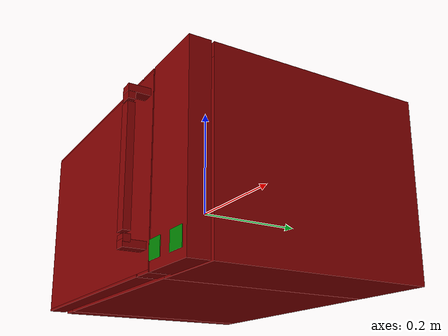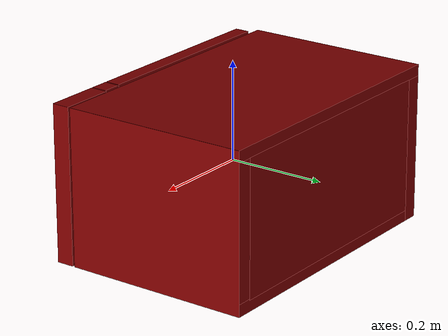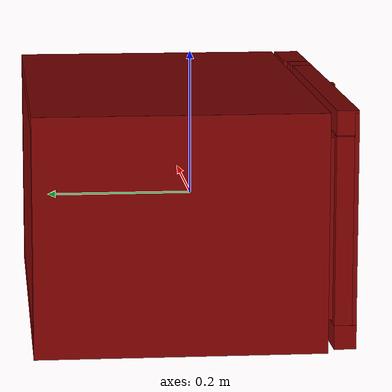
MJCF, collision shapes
<?xml version='1.0' encoding='UTF-8'?>
<mujoco model="model">
  <option timestep="0.002" gravity="0.0 0.0 -9.81"/>
  <compiler angle="radian"/>
  <asset>
    <mesh file="visuals/door.obj" name="door_vis"/>
    <mesh file="visuals/door_Clear.obj" name="door_Clear_vis"/>
    <mesh file="visuals/Body001.obj" name="Body001_vis"/>
    <mesh file="visuals/Disc001.obj" name="Disc001_vis"/>
    <texture file="visuals/T_BC001.png" name="Body001_material" type="2d"/>
    <material name="Body001_material" rgba="1 1 1 1.0" texture="Body001_material" shininess="0.4472135901451111" specular="0.5"/>
    <texture file="visuals/T_BC001.png" name="door_material" type="2d"/>
    <material name="door_material" rgba="1 1 1 1.0" texture="door_material" shininess="0.4472135901451111" specular="0.5"/>
    <texture file="visuals/T_BC001.png" name="door_Clear_material" type="2d"/>
    <material name="door_Clear_material" rgba="1 1 1 0.7461665868759155" texture="door_Clear_material" shininess="0.5" specular="0.3103448502657381"/>
    <texture file="visuals/T_BC001.png" name="Disc001_material" type="2d"/>
    <material name="Disc001_material" rgba="1 1 1 1.0" texture="Disc001_material" shininess="0.4472135901451111" specular="0.3103448502657381"/>
  </asset>
  <default>
    <default class="visual">
      <geom conaffinity="0" contype="0" group="1" type="mesh"/>
    </default>
    <default class="collision">
      <geom group="0" rgba="0.5 0 0 0.5"/>
    </default>
    <default class="spawn">
      <geom group="0" rgba="1 1 1 0.5" contype="0" conaffinity="0"/>
      <site group="0" rgba="1 1 1 0.5"/>
    </default>
    <default class="region">
      <geom group="1" conaffinity="0" contype="0" rgba="0 1 0 0"/>
    </default>
  </default>
  <worldbody>
    <body>
      <body name="object">
        <geom class="collision" type="cylinder" pos="-0.06337848 0.01617843 -0.12393230" size="0.15958929061889648 0.00219227303750813" quat="1.0 0.0 0.0 0.0" name="tray" rgba="0 1 0 0.5"/>
        <geom class="collision" type="box" pos="0.27165092 -0.19609573 -0.12911044" size="0.01778864488005638 0.0004714453825727105 0.015375573188066483" quat="1.0 0.0 0.0 0.0" name="stop_button" rgba="0.0 0.5 0 0.5"/>
        <geom class="collision" type="box" pos="0.20700557 -0.19609573 -0.12901173" size="0.017673127353191376 0.0004856445884797722 0.015215178951621056" quat="1.0 0.0 0.0 0.0" name="start_button" rgba="0.0 0.5 0 0.5"/>
        <geom mesh="Body001_vis" type="mesh" solimp="0.998 0.998 0.001" solref="0.001 1" friction="0.95 0.3 0.1" class="visual" material="Body001_material"/>
        <geom class="collision" type="box" pos="-0.00004140 0.03823852 -0.14610830" size="0.29566651582717896 0.19136711955070496 0.012420483864843845" quat="1.0 0.0 0.0 0.0"/>
        <geom class="collision" type="box" pos="-0.27927723 0.03823842 -0.00004964" size="0.016435038298368454 0.19136762619018555 0.15847915410995483" quat="1.0 0.0 0.0 0.0"/>
        <geom class="collision" type="box" pos="0.22286250 0.03823116 -0.00006048" size="0.07280100136995316 0.19136066734790802 0.15849001705646515" quat="1.0 0.0 0.0 0.0"/>
        <geom class="collision" type="box" pos="-0.00011076 0.03823836 0.14699513" size="0.2955980598926544 0.19136814773082733 0.011555762961506844" quat="1.0 0.0 0.0 0.0"/>
        <geom class="collision" type="box" pos="0.24033848 -0.17531618 0.00000026" size="0.05532510206103325 0.01772184483706951 0.15855064988136292" quat="1.0 0.0 0.0 0.0"/>
        <geom class="collision" type="box" pos="0.00051635 0.21268383 -0.00026216" size="0.26304200291633606 0.016924718394875526 0.13627800345420837" quat="1.0 0.0 0.0 0.0"/>
        <body name="door">
          <joint axis="0.0 0.0 1.0" pos="-0.27760436 -0.17558492 0.00234197" limited="true" name="microjoint" range="-1.5707963267948966 0.0" type="hinge" damping="1" frictionloss="1" armature=".01" stiffness="0.05"/>
          <geom mesh="door_vis" type="mesh" solimp="0.998 0.998 0.001" solref="0.001 1" friction="0.95 0.3 0.1" class="visual" material="door_material"/>
          <geom class="collision" type="box" pos="-0.06762617 -0.17846995 0.14213432" size="0.20889529585838318 0.014686024747788906 0.016416562721133232" quat="1.0 0.0 0.0 0.0"/>
          <geom class="collision" type="box" pos="-0.06806992 -0.17846992 -0.14244628" size="0.20933932065963745 0.014686010777950287 0.016104184091091156" quat="1.0 0.0 0.0 0.0"/>
          <geom class="collision" type="box" pos="-0.26717403 -0.17846989 -0.00103410" size="0.009744858369231224 0.014686006121337414 0.1256919503211975" quat="1.0 0.0 0.0 0.0"/>
          <geom class="collision" type="box" pos="0.16294425 -0.17762169 0.00000023" size="0.018825886771082878 0.01553423423320055 0.1585506647825241" quat="1.0 0.0 0.0 0.0"/>
          <geom class="collision" type="box" pos="-0.05994245 -0.17537486 -0.00080180" size="0.20121276378631592 0.017781052738428116 0.12148965895175934" quat="1.0 0.0 0.0 0.0"/>
          <geom class="collision" type="box" pos="0.16369563 -0.22471353 -0.00029092" size="0.010553719475865364 0.006045930087566376 0.09912437200546265" quat="1.0 0.0 0.0 0.0" name="door_handle_main"/>
          <geom class="collision" type="box" pos="0.16369563 -0.21195609 0.12197532" size="0.010553737170994282 0.018228691071271896 0.006046021357178688" quat="1.0 0.0 0.0 0.0"/>
          <geom class="collision" type="box" pos="0.16369561 -0.21201608 -0.11826349" size="0.010553755797445774 0.01828869991004467 0.006046021357178688" quat="1.0 0.0 0.0 0.0"/>
          <geom class="collision" type="box" pos="0.16369563 -0.22426991 0.10978591" size="0.0105538135394454 0.005914989858865738 0.006046021357178688" quat="1.0 0.0 0.0 0.0"/>
          <geom class="collision" type="box" pos="0.16369563 -0.22426991 -0.11047623" size="0.010553828440606594 0.0059149968437850475 0.006046021357178688" quat="1.0 0.0 0.0 0.0"/>
          <geom class="collision" type="box" pos="-0.04769826 -0.19017524 0.00046869" size="0.22929877042770386 0.002980869961902499 0.15478459000587463" quat="1.0 0.0 0.0 0.0" name="door_main"/>
          <body name="door_Clear">
            <geom mesh="door_Clear_vis" type="mesh" solimp="0.998 0.998 0.001" solref="0.001 1" friction="0.95 0.3 0.1" class="visual" material="door_Clear_material"/>
            <geom class="collision" type="box" pos="-0.05994245 -0.17537486 -0.00080180" size="0.20121276378631592 0.017781052738428116 0.12148965895175934" quat="1.0 0.0 0.0 0.0"/>
          </body>
        </body>
        <body name="Disc001">
          <joint axis="0.0 0.0 1.0" pos="-0.06338131 0.01618113 -0.12143832" limited="false" name="Disc001_joint" range="0 360" type="hinge" damping="1" frictionloss="1" armature=".01" stiffness="0.05"/>
          <geom mesh="Disc001_vis" type="mesh" solimp="0.998 0.998 0.001" solref="0.001 1" friction="0.95 0.3 0.1" class="visual" material="Disc001_material"/>
          <geom class="collision" type="cylinder" pos="-0.06337848 0.01617843 -0.12928546" size="0.15958929061889648 0.00219227303750813" quat="1.0 0.0 0.0 0.0"/>
        </body>
        <geom class="region" name="reg_int" type="box" pos="-0.05676395499999999 0.021246540000000008 0.003857315" size="0.200783455 0.16982521 0.126597345"/>
        <geom class="region" name="reg_main" type="box" pos="-2.439500000001038e-05 0.018228209999999995 2.6000000000192536e-07" size="0.296687855 0.21238434 0.15955062"/>
      <geom class="region" name="reg_tray" type="cylinder" pos="-0.06337848 0.01617843 0.0043573165187540674" size="0.15958929061889648 0.12509734348124593"/></body>
    </body>
  </worldbody>
  <actuator>
    <motor name="microjoint_actuator" joint="microjoint" gear="10"/>
    <motor name="Disc001_joint_actuator" joint="Disc001_joint" gear="10"/>
  </actuator>
</mujoco>
